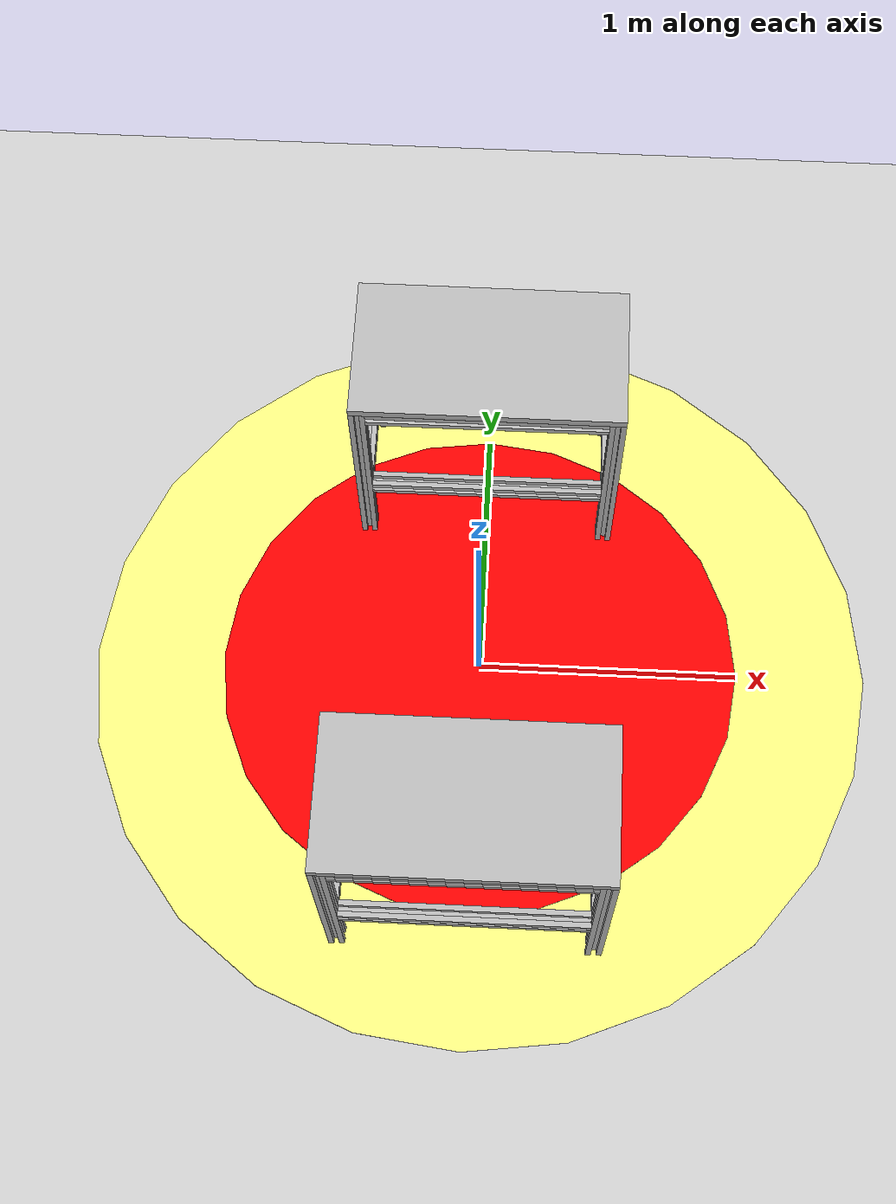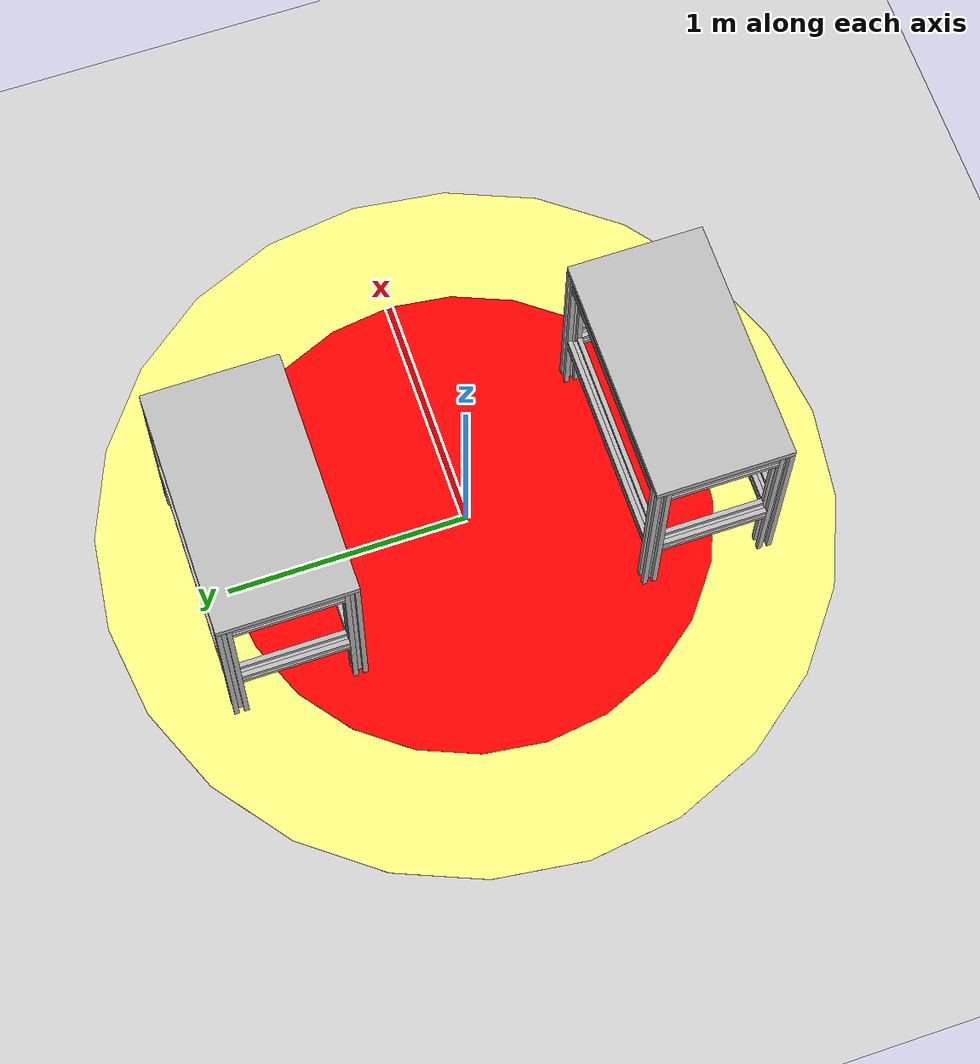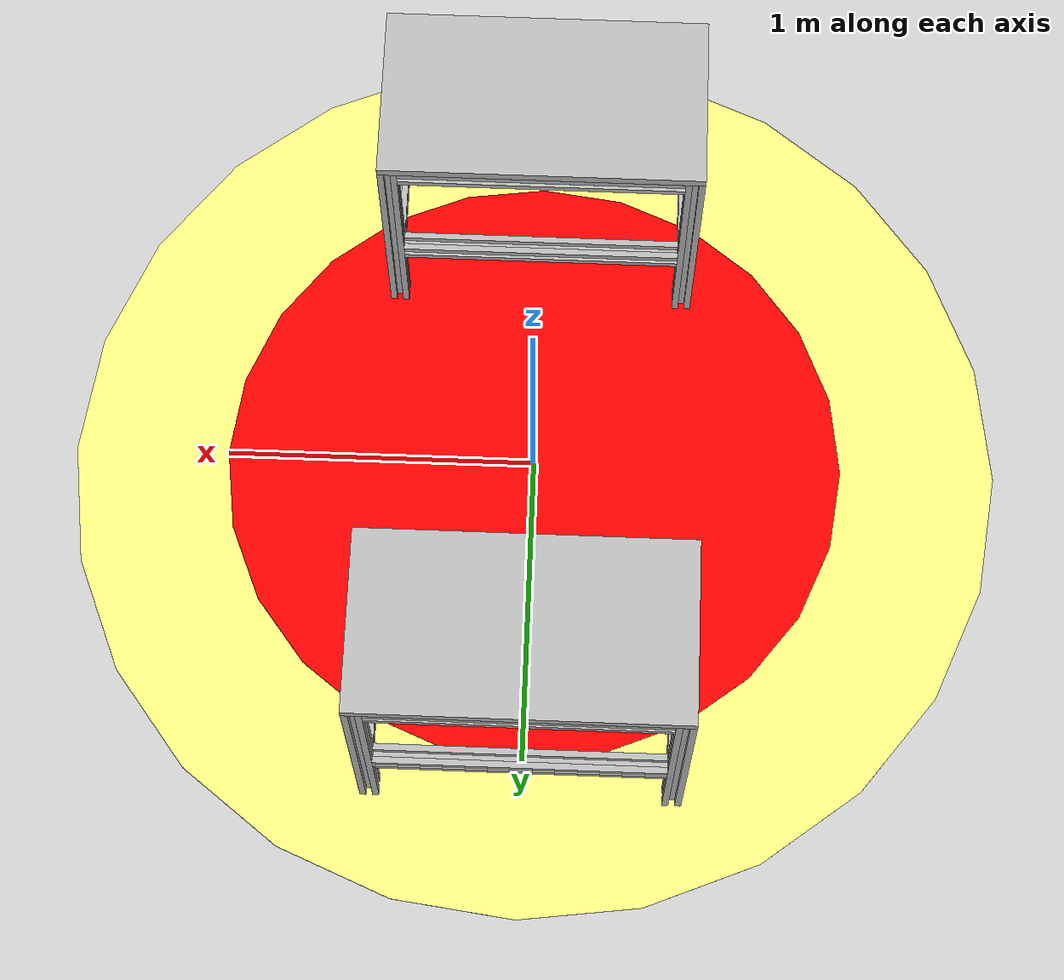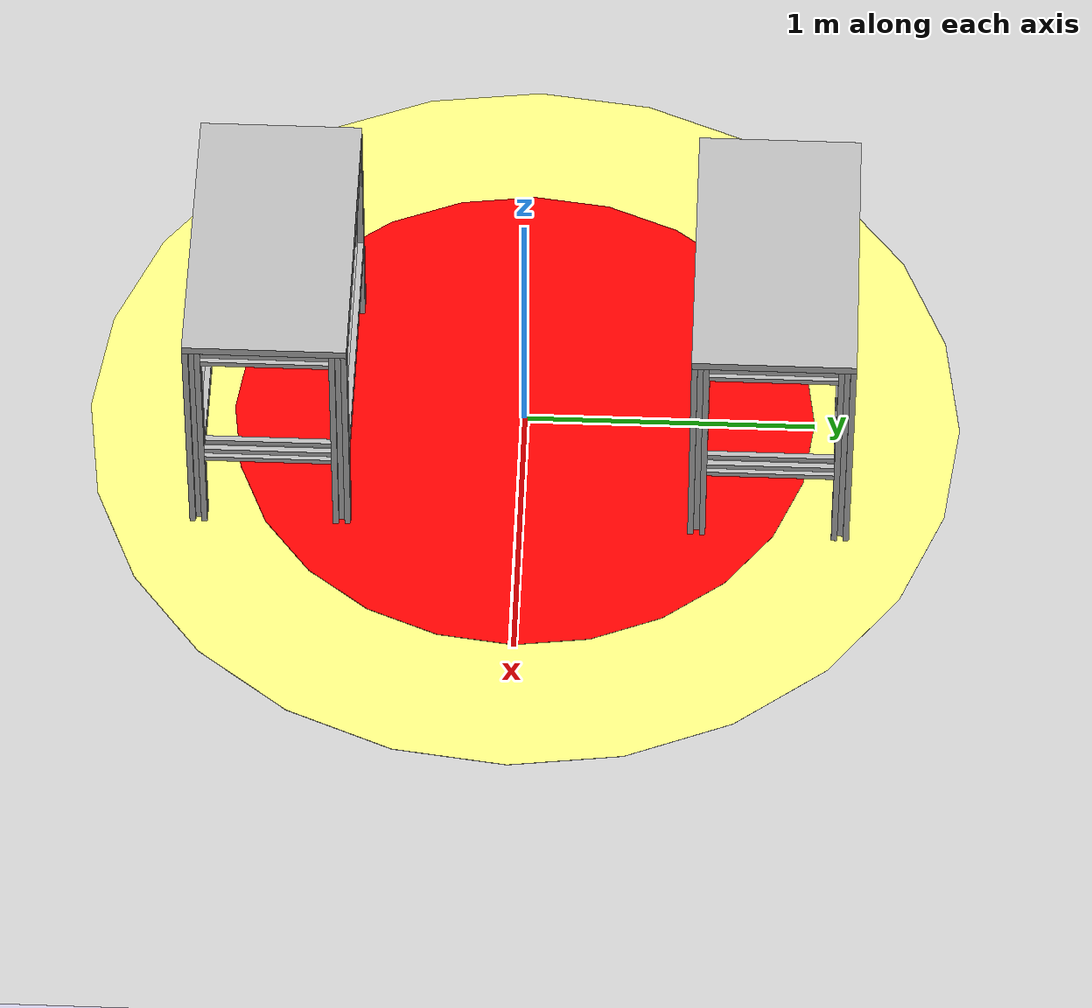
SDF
<sdf version="1.4">
 <world name="default">
  <include><uri>model://ground_plane</uri></include>
  <include><uri>model://sun</uri></include>
  <include><uri>model://table_side_ipr</uri><name>table_2</name><pose>0 0.85 0 0 0 1.57</pose></include>
  <include><uri>model://table_side_ipr</uri><name>table_3</name><pose>0 -0.85 0 0 0 1.57</pose></include>
  <include><uri>model://warning_zone</uri><name>warning_zone</name></include>
 </world>
</sdf>

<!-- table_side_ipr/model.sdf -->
<sdf version='1.4'>
  <model name="table_ipr">

    <include>
      <uri>model://table_side_top</uri>
      <pose>0 0 0 0 0 0</pose>

    </include>

    <include>
      <uri>model://table_leg</uri>
	<name>leg_1</name>
      <pose>0.245 0.470 0 0 0 0</pose>
    </include>

    <include>
      <uri>model://table_leg</uri>
	<name>leg_2</name>
      <pose>-0.245 -0.470 0 0 0 0</pose>
    </include>

    <include>
      <uri>model://table_leg</uri>
	<name>leg_3</name>
      <pose>-0.245 0.470 0 0 0 0</pose>
    </include>

    <include>
      <uri>model://table_leg</uri>
	<name>leg_4</name>
      <pose>0.245 -0.470 0 0 0 0</pose>
    </include>

    <joint name="table_glue" type="fixed">
	<child>table_top::link</child>
	<parent>leg_1::chassis1</parent>
    </joint>

    <joint name="table_glue2" type="fixed">
	<child>table_top::link</child>
	<parent>leg_2::chassis1</parent>
    </joint>

    <joint name="table_glue3" type="fixed">
	<child>table_top::link</child>
	<parent>leg_3::chassis1</parent>
    </joint>

    <joint name="table_glue4" type="fixed">
	<child>table_top::link</child>
	<parent>leg_4::chassis1</parent>
    </joint>

    <include>
      <uri>model://table_side_bar_small</uri>
	<name>bar_1</name>
      <pose>0 0.470 0.860 0 1.57 0</pose>
    </include>

    <include>
      <uri>model://table_side_bar_small</uri>
	<name>bar_2</name>
      <pose>0 0.470  0.360 0 1.57 0</pose>
    </include>

    <include>
      <uri>model://table_side_bar_small</uri>
	<name>bar_3</name>
      <pose>0 -0.470 0.860 0 1.57 0</pose>
    </include>

    <include>
      <uri>model://table_side_bar_small</uri>
	<name>bar_4</name>
      <pose>0 -0.470  0.360 0 1.57 0</pose>
    </include>

   <include>
      <uri>model://table_side_bar_large</uri>
      <name>bar_5</name>
      <pose>0.245 0 0.360 1.57 0 0</pose>
   </include>

   <include>
      <uri>model://table_side_bar_large</uri>
      <name>bar_6</name>
      <pose>-0.245 0 0.360 1.57 0 0</pose>
   </include>

   <include>
      <uri>model://table_side_bar_large</uri>
      <name>bar_7</name>
      <pose>0.245 0 0.860 1.57 0 0</pose>
   </include>

   <include>
      <uri>model://table_side_bar_large</uri>
      <name>bar_8</name>
      <pose>-0.245 0 0.860 1.57 0 0</pose>
   </include>

  </model>
</sdf>

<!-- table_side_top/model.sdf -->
<sdf version='1.4'>
  <model name="top">
  <static>true</static>

	<link name='link'>
            <collision name="surface">
        <pose>0 0 0.905 0 0 0</pose>
        <geometry>
          <box>
            <size>0.55 1 0.03</size>
          </box>
        </geometry>
        <surface>
          <friction>
            <ode>
              <mu>0.6</mu>
              <mu2>0.6</mu2>
            </ode>
          </friction>
        </surface>
      </collision>
      <visual name="visual1">
        <pose>0 0 0.905 0 0 0</pose>
        <geometry>
          <box>
            <size>0.55 1 0.03</size>
          </box>
        </geometry>

      </visual>

   </link>
  </model>
</sdf>

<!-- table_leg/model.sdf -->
<sdf version='1.4'>
  <model name="top">
  <static>true</static>

	<link name='chassis1'>
            <collision name="surface">
        <pose>0 0 0.445 0 0 0</pose>
        <geometry>
          <box>
            <size>0.02 0.02 0.89</size>
          </box>
        </geometry>
        <surface>
          <friction>
            <ode>
              <mu>0.6</mu>
              <mu2>0.6</mu2>
            </ode>
          </friction>
        </surface>
      </collision>
      <visual name="visual1">
        <pose>0 0 0.445 0 0 0</pose>
        <geometry>
          <box>
            <size>0.02 0.02 0.89</size>
          </box>
        </geometry>

      </visual>
</link>

<link name='chassis2'>
            <collision name="surface">
        <pose>0.02 0.02 0.445 0 0 0</pose>
        <geometry>
          <box>
            <size>0.02 0.02 0.89</size>
          </box>
        </geometry>
        <surface>
          <friction>
            <ode>
              <mu>0.6</mu>
              <mu2>0.6</mu2>
            </ode>
          </friction>
        </surface>
      </collision>
      <visual name="visual1">
        <pose>0.02 0.02 0.445 0 0 0</pose>
        <geometry>
          <box>
            <size>0.02 0.02 0.89</size>
          </box>
        </geometry>

      </visual>
</link>

<link name='chassis3'>
            <collision name="surface">
        <pose>-0.02 0.02 0.445 0 0 0</pose>
        <geometry>
          <box>
            <size>0.02 0.02 0.89</size>
          </box>
        </geometry>
        <surface>
          <friction>
            <ode>
              <mu>0.6</mu>
              <mu2>0.6</mu2>
            </ode>
          </friction>
        </surface>
      </collision>
      <visual name="visual1">
        <pose>-0.02 0.02 0.445 0 0 0</pose>
        <geometry>
          <box>
            <size>0.02 0.02 0.89</size>
          </box>
        </geometry>

      </visual>
</link>

	<link name='chassis4'>
            <collision name="surface">
        <pose>-0.02 -0.02 0.445 0 0 0</pose>
        <geometry>
          <box>
            <size>0.02 0.02 0.89</size>
          </box>
        </geometry>
        <surface>
          <friction>
            <ode>
              <mu>0.6</mu>
              <mu2>0.6</mu2>
            </ode>
          </friction>
        </surface>
      </collision>
      <visual name="visual1">
        <pose>-0.02 -0.02 0.445 0 0 0</pose>
        <geometry>
          <box>
            <size>0.02 0.02 0.89</size>
          </box>
        </geometry>

      </visual>
</link>

<link name='chassis5'>
            <collision name="surface">
        <pose>0.02 -0.02 0.445 0 0 0</pose>
        <geometry>
          <box>
            <size>0.02 0.02 0.89</size>
          </box>
        </geometry>
        <surface>
          <friction>
            <ode>
              <mu>0.6</mu>
              <mu2>0.6</mu2>
            </ode>
          </friction>
        </surface>
      </collision>
      <visual name="visual1">
        <pose>0.02 -0.02 0.445 0 0 0</pose>
        <geometry>
          <box>
            <size>0.02 0.02 0.89</size>
          </box>
        </geometry>

      </visual>
</link>

  </model>
</sdf>

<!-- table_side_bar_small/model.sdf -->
<sdf version='1.4'>
  <model name="bar">
  <static>true</static>

	<link name='chassis1'>
            <collision name="surface">
        <pose>0 0 0 0 0 0</pose>
        <geometry>
          <box>
            <size>0.02 0.02 0.43</size>
          </box>
        </geometry>
        <surface>
          <friction>
            <ode>
              <mu>0.6</mu>
              <mu2>0.6</mu2>
            </ode>
          </friction>
        </surface>
      </collision>
      <visual name="visual1">
        <pose>0 0 0 0 0 0</pose>
        <geometry>
          <box>
            <size>0.02 0.02 0.43</size>
          </box>
        </geometry>

      </visual>
</link>

<link name='chassis2'>
            <collision name="surface">
        <pose>0.02 0.02 0 0 0 0</pose>
        <geometry>
          <box>
            <size>0.02 0.02 0.43</size>
          </box>
        </geometry>
        <surface>
          <friction>
            <ode>
              <mu>0.6</mu>
              <mu2>0.6</mu2>
            </ode>
          </friction>
        </surface>
      </collision>
      <visual name="visual1">
        <pose>0.02 0.02 0.0 0 0 0</pose>
        <geometry>
          <box>
            <size>0.02 0.02 0.43</size>
          </box>
        </geometry>

      </visual>
</link>

<link name='chassis3'>
            <collision name="surface">
        <pose>-0.02 0.02 0.0 0 0 0</pose>
        <geometry>
          <box>
            <size>0.02 0.02 0.43</size>
          </box>
        </geometry>
        <surface>
          <friction>
            <ode>
              <mu>0.6</mu>
              <mu2>0.6</mu2>
            </ode>
          </friction>
        </surface>
      </collision>
      <visual name="visual1">
        <pose>-0.02 0.02 0 0 0 0</pose>
        <geometry>
          <box>
            <size>0.02 0.02 0.43</size>
          </box>
        </geometry>

      </visual>
</link>

	<link name='chassis4'>
            <collision name="surface">
        <pose>-0.02 -0.02 0 0 0 0</pose>
        <geometry>
          <box>
            <size>0.02 0.02 0.43</size>
          </box>
        </geometry>
        <surface>
          <friction>
            <ode>
              <mu>0.6</mu>
              <mu2>0.6</mu2>
            </ode>
          </friction>
        </surface>
      </collision>
      <visual name="visual1">
        <pose>-0.02 -0.02 0 0 0 0</pose>
        <geometry>
          <box>
            <size>0.02 0.02 0.43</size>
          </box>
        </geometry>

      </visual>
</link>

<link name='chassis5'>
            <collision name="surface">
        <pose>0.02 -0.02 0 0 0 0</pose>
        <geometry>
          <box>
            <size>0.02 0.02 0.43</size>
          </box>
        </geometry>
        <surface>
          <friction>
            <ode>
              <mu>0.6</mu>
              <mu2>0.6</mu2>
            </ode>
          </friction>
        </surface>
      </collision>
      <visual name="visual1">
        <pose>0.02 -0.02 0 0 0 0</pose>
        <geometry>
          <box>
            <size>0.02 0.02 0.43</size>
          </box>
        </geometry>

      </visual>
</link>

  </model>
</sdf>

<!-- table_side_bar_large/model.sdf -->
<sdf version='1.4'>
  <model name="bar">
  <static>true</static>

	<link name='chassis1'>
            <collision name="surface">
        <pose>0 0 0 0 0 0</pose>
        <geometry>
          <box>
            <size>0.02 0.02 0.88</size>
          </box>
        </geometry>
        <surface>
          <friction>
            <ode>
              <mu>0.6</mu>
              <mu2>0.6</mu2>
            </ode>
          </friction>
        </surface>
      </collision>
      <visual name="visual1">
        <pose>0 0 0 0 0 0</pose>
        <geometry>
          <box>
            <size>0.02 0.02 0.88</size>
          </box>
        </geometry>

      </visual>
</link>

<link name='chassis2'>
            <collision name="surface">
        <pose>0.02 0.02 0 0 0 0</pose>
        <geometry>
          <box>
            <size>0.02 0.02 0.88</size>
          </box>
        </geometry>
        <surface>
          <friction>
            <ode>
              <mu>0.6</mu>
              <mu2>0.6</mu2>
            </ode>
          </friction>
        </surface>
      </collision>
      <visual name="visual1">
        <pose>0.02 0.02 0.0 0 0 0</pose>
        <geometry>
          <box>
            <size>0.02 0.02 0.88</size>
          </box>
        </geometry>

      </visual>
</link>

<link name='chassis3'>
            <collision name="surface">
        <pose>-0.02 0.02 0.0 0 0 0</pose>
        <geometry>
          <box>
            <size>0.02 0.02 0.88</size>
          </box>
        </geometry>
        <surface>
          <friction>
            <ode>
              <mu>0.6</mu>
              <mu2>0.6</mu2>
            </ode>
          </friction>
        </surface>
      </collision>
      <visual name="visual1">
        <pose>-0.02 0.02 0 0 0 0</pose>
        <geometry>
          <box>
            <size>0.02 0.02 0.88</size>
          </box>
        </geometry>

      </visual>
</link>

	<link name='chassis4'>
            <collision name="surface">
        <pose>-0.02 -0.02 0 0 0 0</pose>
        <geometry>
          <box>
            <size>0.02 0.02 0.88</size>
          </box>
        </geometry>
        <surface>
          <friction>
            <ode>
              <mu>0.6</mu>
              <mu2>0.6</mu2>
            </ode>
          </friction>
        </surface>
      </collision>
      <visual name="visual1">
        <pose>-0.02 -0.02 0 0 0 0</pose>
        <geometry>
          <box>
            <size>0.02 0.02 0.88</size>
          </box>
        </geometry>

      </visual>
</link>

<link name='chassis5'>
            <collision name="surface">
        <pose>0.02 -0.02 0 0 0 0</pose>
        <geometry>
          <box>
            <size>0.02 0.02 0.88</size>
          </box>
        </geometry>
        <surface>
          <friction>
            <ode>
              <mu>0.6</mu>
              <mu2>0.6</mu2>
            </ode>
          </friction>
        </surface>
      </collision>
      <visual name="visual1">
        <pose>0.02 -0.02 0 0 0 0</pose>
        <geometry>
          <box>
            <size>0.02 0.02 0.88</size>
          </box>
        </geometry>

      </visual>
</link>

  </model>
</sdf>

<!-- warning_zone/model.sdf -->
<sdf version="1.6">
  <model name="Color Tutorial Model">
    <static>true</static>

   <link name="darngerous_link">
      <visual name="wheel1_visual">
        <pose>0 0 0.01 0 0 0</pose>
        <geometry>
          <cylinder>
              <radius>1</radius>
              <length>.001</length>
            </cylinder>
        </geometry>
        <material> <!-- Wheel material -->
          <ambient>0.1 0.1 0.1 1</ambient>
          <diffuse>1 0 0 1</diffuse>
          <specular>0 0 0 0</specular>
          <emissive>0 0 0 1</emissive>
        </material> <!-- End wheel material -->
      </visual>
    </link>

       <link name="darngerous_link">
      <visual name="wheel1_visual">
        <pose>0 0 0 0 0 0</pose>
        <geometry>
          <cylinder>
              <radius>1.5</radius>
              <length>.001</length>
            </cylinder>
        </geometry>
        <material> <!-- Wheel material -->
          <ambient>0.1 0.1 0.1 1</ambient>
          <diffuse>1 1 0.5 1</diffuse>
          <specular>0 0 0 0</specular>
          <emissive>0 0 0 1</emissive>
        </material> <!-- End wheel material -->
      </visual>
    </link>

    </model>
</sdf>
